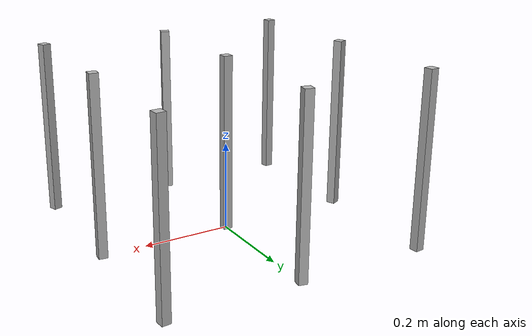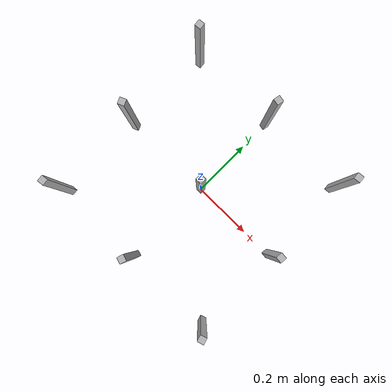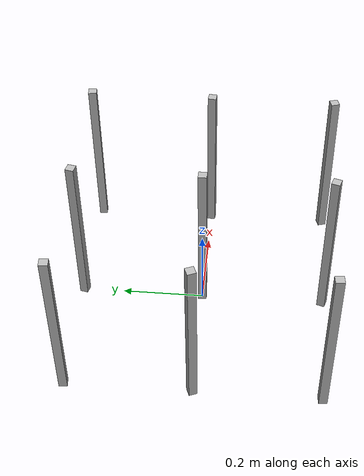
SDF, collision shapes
<?xml version="1.0" ?>
<sdf version="1.6">

  <model name='maize_03'>
    <pose frame=''>0 0 0 0 0 0</pose>
    <link name='base_link'>
      <collision name='collision'>
        <pose>0 0 0.2 0 0 0</pose>
        <geometry>
          <box>
            <size>0.02 0.02 0.4</size>
          </box>
        </geometry>
        <max_contacts>10</max_contacts>
      </collision>
      <visual name='visual'>
        <geometry>
          <mesh>
            <uri>model://maize_01/meshes/maize_01.dae</uri>
            <scale>1 1 1</scale>
          </mesh>
        </geometry>
      </visual>
    </link>

    <link name='link_01'>
    <pose frame=''>0.3 0 0 0 0 -0.1</pose>
      <collision name='collision'>
        <pose>0 0 0.2 0 0 0</pose>
        <geometry>
          <box>
            <size>0.02 0.02 0.4</size>
          </box>
        </geometry>
        <max_contacts>10</max_contacts>
      </collision>
      <visual name='visual'>
        <geometry>
          <mesh>
            <uri>model://maize_02/meshes/maize_02.dae</uri>
            <scale>1 1 1</scale>
          </mesh>
        </geometry>
      </visual>
    </link>

    <link name='link_02'>
    <pose frame=''>-0.3 0 0 0 0 0.4</pose>
      <collision name='collision'>
        <pose>0 0 0.2 0 0 0</pose>
        <geometry>
          <box>
            <size>0.02 0.02 0.4</size>
          </box>
        </geometry>
        <max_contacts>10</max_contacts>
      </collision>
      <visual name='visual'>
        <geometry>
          <mesh>
            <uri>model://maize_01/meshes/maize_01.dae</uri>
            <scale>1 1 1</scale>
          </mesh>
        </geometry>
      </visual>
    </link>

    <link name='link_04'>
    <pose frame=''>0 0.3 0 0 0 -0.2</pose>
      <collision name='collision'>
        <pose>0 0 0.2 0 0 0</pose>
        <geometry>
          <box>
            <size>0.02 0.02 0.4</size>
          </box>
        </geometry>
        <max_contacts>10</max_contacts>
      </collision>
      <visual name='visual'>
        <geometry>
          <mesh>
            <uri>model://maize_02/meshes/maize_02.dae</uri>
            <scale>1 1 1</scale>
          </mesh>
        </geometry>
      </visual>
    </link>

    <link name='link_05'>
    <pose frame=''>0 -0.3 0 0 0 -0.3</pose>
      <collision name='collision'>
        <pose>0 0 0.2 0 0 0</pose>
        <geometry>
          <box>
            <size>0.02 0.02 0.4</size>
          </box>
        </geometry>
        <max_contacts>10</max_contacts>
      </collision>
      <visual name='visual'>
        <geometry>
          <mesh>
            <uri>model://maize_01/meshes/maize_01.dae</uri>
            <scale>1 1 1</scale>
          </mesh>
        </geometry>
      </visual>
    </link>

    <link name='link_06'>
    <pose frame=''>0.3 0.3 0 0 0 0.1</pose>
      <collision name='collision'>
        <pose>0 0 0.2 0 0 0</pose>
        <geometry>
          <box>
            <size>0.02 0.02 0.4</size>
          </box>
        </geometry>
        <max_contacts>10</max_contacts>
      </collision>
      <visual name='visual'>
        <geometry>
          <mesh>
            <uri>model://maize_01/meshes/maize_01.dae</uri>
            <scale>1 1 1</scale>
          </mesh>
        </geometry>
      </visual>
    </link>

    <link name='link_07'>
    <pose frame=''>0.3 -0.3 0 0 0 0.3</pose>
      <collision name='collision'>
        <pose>0 0 0.2 0 0 0</pose>
        <geometry>
          <box>
            <size>0.02 0.02 0.4</size>
          </box>
        </geometry>
        <max_contacts>10</max_contacts>
      </collision>
      <visual name='visual'>
        <geometry>
          <mesh>
            <uri>model://maize_02/meshes/maize_02.dae</uri>
            <scale>1 1 1</scale>
          </mesh>
        </geometry>
      </visual>
    </link>

    <link name='link_08'>
    <pose frame=''>-0.3 0.3 0 0 0 0.1</pose>
      <collision name='collision'>
        <pose>0 0 0.2 0 0 0</pose>
        <geometry>
          <box>
            <size>0.02 0.02 0.4</size>
          </box>
        </geometry>
        <max_contacts>10</max_contacts>
      </collision>
      <visual name='visual'>
        <geometry>
          <mesh>
            <uri>model://maize_01/meshes/maize_01.dae</uri>
            <scale>1 1 1</scale>
          </mesh>
        </geometry>
      </visual>
    </link>

    <link name='link_09'>
    <pose frame=''>-0.3 -0.3 0 0 0 0.1</pose>
      <collision name='collision'>
        <pose>0 0 0.2 0 0 0</pose>
        <geometry>
          <box>
            <size>0.02 0.02 0.4</size>
          </box>
        </geometry>
        <max_contacts>10</max_contacts>
      </collision>
      <visual name='visual'>
        <geometry>
          <mesh>
            <uri>model://maize_01/meshes/maize_01.dae</uri>
            <scale>1 1 1</scale>
          </mesh>
        </geometry>
      </visual>
    </link>

  </model>
</sdf>
